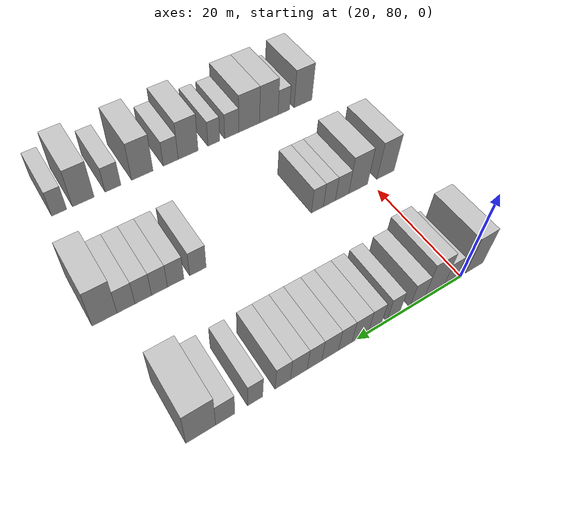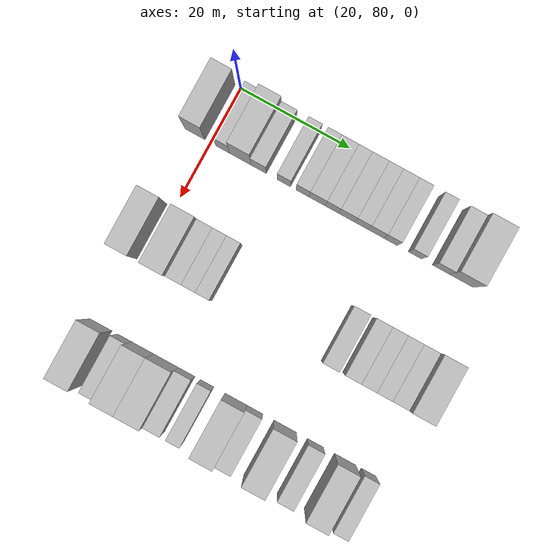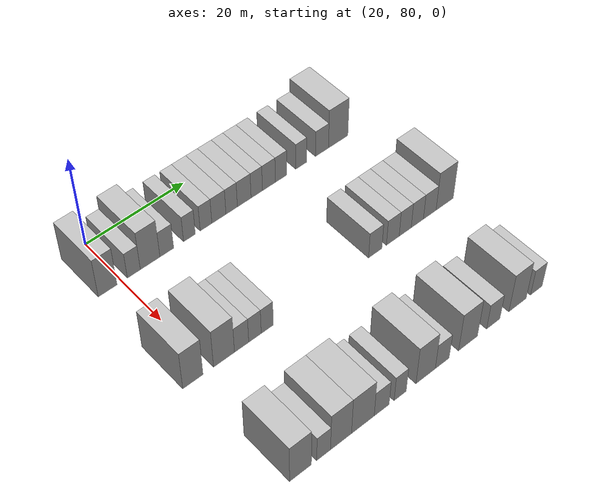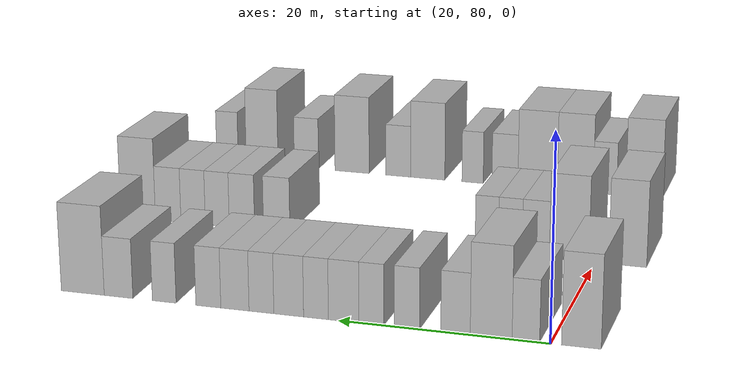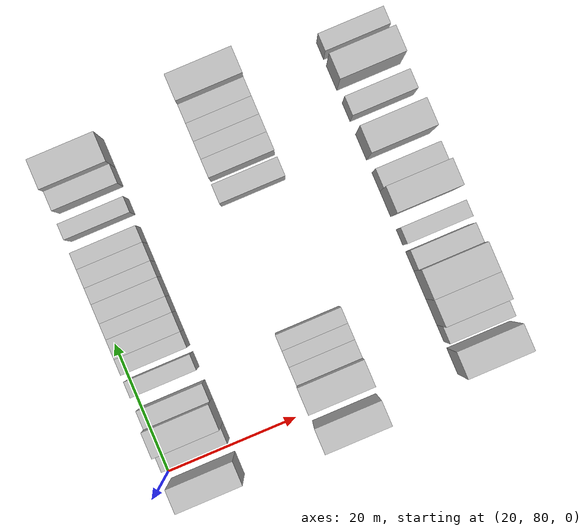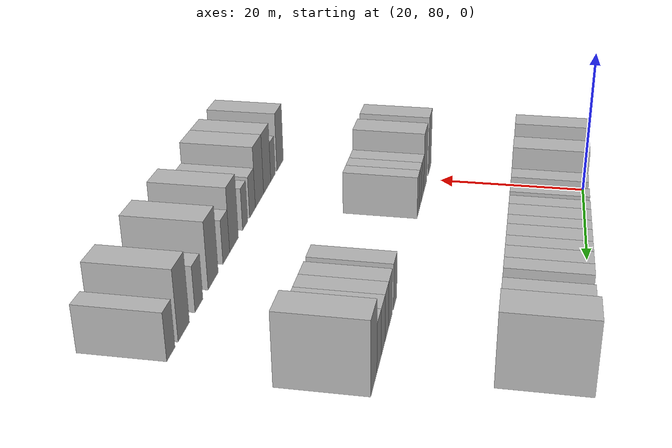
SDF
<sdf version="1.6">
 <world name="default">
  <model name="building_118">
   <static>1</static>
   <pose>25.0000 77.1916 0 0.000000 0.000000 0.000000</pose>
   <link name="link">
    <pose>0 0 4.50 0 0 0</pose>
    <collision name="collision"><geometry><box><size>10.0000 3.6108 9.0000</size></box></geometry></collision>
    <visual name="visual">
     <cast_shadows>0</cast_shadows>
     <geometry><box><size>10.0000 3.6108 9.0000</size></box></geometry>
     <material>
      <script>
       <uri>model://HANNAS_wall/materials/scripts</uri>
       <uri>model://HANNAS_wall/materials/textures</uri>
       <name>vrc/HANNAS_wall</name>
      </script>
     </material>
    </visual>
   </link>
  </model>
  <model name="building_119">
   <static>1</static>
   <pose>25.0000 82.2670 0 0.000000 0.000000 0.000000</pose>
   <link name="link">
    <pose>0 0 3.00 0 0 0</pose>
    <collision name="collision"><geometry><box><size>10.0000 2.5400 6.0000</size></box></geometry></collision>
    <visual name="visual">
     <cast_shadows>0</cast_shadows>
     <geometry><box><size>10.0000 2.5400 6.0000</size></box></geometry>
     <material>
      <script>
       <uri>model://HANNAS_wall/materials/scripts</uri>
       <uri>model://HANNAS_wall/materials/textures</uri>
       <name>vrc/HANNAS_wall</name>
      </script>
     </material>
    </visual>
   </link>
  </model>
  <model name="building_120">
   <static>1</static>
   <pose>25.0000 85.4828 0 0.000000 0.000000 0.000000</pose>
   <link name="link">
    <pose>0 0 4.50 0 0 0</pose>
    <collision name="collision"><geometry><box><size>10.0000 3.8915 9.0000</size></box></geometry></collision>
    <visual name="visual">
     <cast_shadows>0</cast_shadows>
     <geometry><box><size>10.0000 3.8915 9.0000</size></box></geometry>
     <material>
      <script>
       <uri>model://HANNAS_wall/materials/scripts</uri>
       <uri>model://HANNAS_wall/materials/textures</uri>
       <name>vrc/HANNAS_wall</name>
      </script>
     </material>
    </visual>
   </link>
  </model>
  <model name="building_121">
   <static>1</static>
   <pose>25.0000 88.8142 0 0.000000 0.000000 0.000000</pose>
   <link name="link">
    <pose>0 0 3.00 0 0 0</pose>
    <collision name="collision"><geometry><box><size>10.0000 2.7714 6.0000</size></box></geometry></collision>
    <visual name="visual">
     <cast_shadows>0</cast_shadows>
     <geometry><box><size>10.0000 2.7714 6.0000</size></box></geometry>
     <material>
      <script>
       <uri>model://HANNAS_wall/materials/scripts</uri>
       <uri>model://HANNAS_wall/materials/textures</uri>
       <name>vrc/HANNAS_wall</name>
      </script>
     </material>
    </visual>
   </link>
  </model>
  <model name="building_122">
   <static>1</static>
   <pose>25.0000 93.4054 0 0.000000 0.000000 0.000000</pose>
   <link name="link">
    <pose>0 0 3.00 0 0 0</pose>
    <collision name="collision"><geometry><box><size>10.0000 2.4109 6.0000</size></box></geometry></collision>
    <visual name="visual">
     <cast_shadows>0</cast_shadows>
     <geometry><box><size>10.0000 2.4109 6.0000</size></box></geometry>
     <material>
      <script>
       <uri>model://HANNAS_wall/materials/scripts</uri>
       <uri>model://HANNAS_wall/materials/textures</uri>
       <name>vrc/HANNAS_wall</name>
      </script>
     </material>
    </visual>
   </link>
  </model>
  <model name="building_123">
   <static>1</static>
   <pose>25.0000 96.8146 0 0.000000 0.000000 0.000000</pose>
   <link name="link">
    <pose>0 0 3.00 0 0 0</pose>
    <collision name="collision"><geometry><box><size>10.0000 2.4075 6.0000</size></box></geometry></collision>
    <visual name="visual">
     <cast_shadows>0</cast_shadows>
     <geometry><box><size>10.0000 2.4075 6.0000</size></box></geometry>
     <material>
      <script>
       <uri>model://HANNAS_wall/materials/scripts</uri>
       <uri>model://HANNAS_wall/materials/textures</uri>
       <name>vrc/HANNAS_wall</name>
      </script>
     </material>
    </visual>
   </link>
  </model>
  <model name="building_124">
   <static>1</static>
   <pose>25.0000 99.4954 0 0.000000 0.000000 0.000000</pose>
   <link name="link">
    <pose>0 0 3.00 0 0 0</pose>
    <collision name="collision"><geometry><box><size>10.0000 2.9541 6.0000</size></box></geometry></collision>
    <visual name="visual">
     <cast_shadows>0</cast_shadows>
     <geometry><box><size>10.0000 2.9541 6.0000</size></box></geometry>
     <material>
      <script>
       <uri>model://HANNAS_wall/materials/scripts</uri>
       <uri>model://HANNAS_wall/materials/textures</uri>
       <name>vrc/HANNAS_wall</name>
      </script>
     </material>
    </visual>
   </link>
  </model>
  <model name="building_125">
   <static>1</static>
   <pose>25.0000 102.1834 0 0.000000 0.000000 0.000000</pose>
   <link name="link">
    <pose>0 0 3.00 0 0 0</pose>
    <collision name="collision"><geometry><box><size>10.0000 2.4220 6.0000</size></box></geometry></collision>
    <visual name="visual">
     <cast_shadows>0</cast_shadows>
     <geometry><box><size>10.0000 2.4220 6.0000</size></box></geometry>
     <material>
      <script>
       <uri>model://HANNAS_wall/materials/scripts</uri>
       <uri>model://HANNAS_wall/materials/textures</uri>
       <name>vrc/HANNAS_wall</name>
      </script>
     </material>
    </visual>
   </link>
  </model>
  <model name="building_126">
   <static>1</static>
   <pose>25.0000 104.8587 0 0.000000 0.000000 0.000000</pose>
   <link name="link">
    <pose>0 0 3.00 0 0 0</pose>
    <collision name="collision"><geometry><box><size>10.0000 2.9284 6.0000</size></box></geometry></collision>
    <visual name="visual">
     <cast_shadows>0</cast_shadows>
     <geometry><box><size>10.0000 2.9284 6.0000</size></box></geometry>
     <material>
      <script>
       <uri>model://HANNAS_wall/materials/scripts</uri>
       <uri>model://HANNAS_wall/materials/textures</uri>
       <name>vrc/HANNAS_wall</name>
      </script>
     </material>
    </visual>
   </link>
  </model>
  <model name="building_127">
   <static>1</static>
   <pose>25.0000 107.5523 0 0.000000 0.000000 0.000000</pose>
   <link name="link">
    <pose>0 0 3.00 0 0 0</pose>
    <collision name="collision"><geometry><box><size>10.0000 2.4589 6.0000</size></box></geometry></collision>
    <visual name="visual">
     <cast_shadows>0</cast_shadows>
     <geometry><box><size>10.0000 2.4589 6.0000</size></box></geometry>
     <material>
      <script>
       <uri>model://HANNAS_wall/materials/scripts</uri>
       <uri>model://HANNAS_wall/materials/textures</uri>
       <name>vrc/HANNAS_wall</name>
      </script>
     </material>
    </visual>
   </link>
  </model>
  <model name="building_128">
   <static>1</static>
   <pose>25.0000 110.1940 0 0.000000 0.000000 0.000000</pose>
   <link name="link">
    <pose>0 0 3.00 0 0 0</pose>
    <collision name="collision"><geometry><box><size>10.0000 2.8244 6.0000</size></box></geometry></collision>
    <visual name="visual">
     <cast_shadows>0</cast_shadows>
     <geometry><box><size>10.0000 2.8244 6.0000</size></box></geometry>
     <material>
      <script>
       <uri>model://HANNAS_wall/materials/scripts</uri>
       <uri>model://HANNAS_wall/materials/textures</uri>
       <name>vrc/HANNAS_wall</name>
      </script>
     </material>
    </visual>
   </link>
  </model>
  <model name="building_129">
   <static>1</static>
   <pose>25.0000 112.8633 0 0.000000 0.000000 0.000000</pose>
   <link name="link">
    <pose>0 0 3.00 0 0 0</pose>
    <collision name="collision"><geometry><box><size>10.0000 2.5143 6.0000</size></box></geometry></collision>
    <visual name="visual">
     <cast_shadows>0</cast_shadows>
     <geometry><box><size>10.0000 2.5143 6.0000</size></box></geometry>
     <material>
      <script>
       <uri>model://HANNAS_wall/materials/scripts</uri>
       <uri>model://HANNAS_wall/materials/textures</uri>
       <name>vrc/HANNAS_wall</name>
      </script>
     </material>
    </visual>
   </link>
  </model>
  <model name="building_130">
   <static>1</static>
   <pose>25.0000 117.3321 0 0.000000 0.000000 0.000000</pose>
   <link name="link">
    <pose>0 0 3.00 0 0 0</pose>
    <collision name="collision"><geometry><box><size>10.0000 2.4233 6.0000</size></box></geometry></collision>
    <visual name="visual">
     <cast_shadows>0</cast_shadows>
     <geometry><box><size>10.0000 2.4233 6.0000</size></box></geometry>
     <material>
      <script>
       <uri>model://HANNAS_wall/materials/scripts</uri>
       <uri>model://HANNAS_wall/materials/textures</uri>
       <name>vrc/HANNAS_wall</name>
      </script>
     </material>
    </visual>
   </link>
  </model>
  <model name="building_131">
   <static>1</static>
   <pose>25.0000 122.0256 0 0.000000 0.000000 0.000000</pose>
   <link name="link">
    <pose>0 0 3.00 0 0 0</pose>
    <collision name="collision"><geometry><box><size>10.0000 2.9635 6.0000</size></box></geometry></collision>
    <visual name="visual">
     <cast_shadows>0</cast_shadows>
     <geometry><box><size>10.0000 2.9635 6.0000</size></box></geometry>
     <material>
      <script>
       <uri>model://HANNAS_wall/materials/scripts</uri>
       <uri>model://HANNAS_wall/materials/textures</uri>
       <name>vrc/HANNAS_wall</name>
      </script>
     </material>
    </visual>
   </link>
  </model>
  <model name="building_132">
   <static>1</static>
   <pose>25.0000 125.7455 0 0.000000 0.000000 0.000000</pose>
   <link name="link">
    <pose>0 0 4.50 0 0 0</pose>
    <collision name="collision"><geometry><box><size>10.0000 4.4764 9.0000</size></box></geometry></collision>
    <visual name="visual">
     <cast_shadows>0</cast_shadows>
     <geometry><box><size>10.0000 4.4764 9.0000</size></box></geometry>
     <material>
      <script>
       <uri>model://HANNAS_wall/materials/scripts</uri>
       <uri>model://HANNAS_wall/materials/textures</uri>
       <name>vrc/HANNAS_wall</name>
      </script>
     </material>
    </visual>
   </link>
  </model>
  <model name="building_305">
   <static>1</static>
   <pose>47.0000 76.7585 0 0.000000 0.000000 0.000000</pose>
   <link name="link">
    <pose>0 0 4.50 0 0 0</pose>
    <collision name="collision"><geometry><box><size>10.0000 3.8230 9.0000</size></box></geometry></collision>
    <visual name="visual">
     <cast_shadows>0</cast_shadows>
     <geometry><box><size>10.0000 3.8230 9.0000</size></box></geometry>
     <material>
      <script>
       <uri>model://HANNAS_wall/materials/scripts</uri>
       <uri>model://HANNAS_wall/materials/textures</uri>
       <name>vrc/HANNAS_wall</name>
      </script>
     </material>
    </visual>
   </link>
  </model>
  <model name="building_306">
   <static>1</static>
   <pose>47.0000 82.6899 0 0.000000 0.000000 0.000000</pose>
   <link name="link">
    <pose>0 0 4.50 0 0 0</pose>
    <collision name="collision"><geometry><box><size>10.0000 4.0398 9.0000</size></box></geometry></collision>
    <visual name="visual">
     <cast_shadows>0</cast_shadows>
     <geometry><box><size>10.0000 4.0398 9.0000</size></box></geometry>
     <material>
      <script>
       <uri>model://HANNAS_wall/materials/scripts</uri>
       <uri>model://HANNAS_wall/materials/textures</uri>
       <name>vrc/HANNAS_wall</name>
      </script>
     </material>
    </visual>
   </link>
  </model>
  <model name="building_307">
   <static>1</static>
   <pose>47.0000 86.1026 0 0.000000 0.000000 0.000000</pose>
   <link name="link">
    <pose>0 0 3.00 0 0 0</pose>
    <collision name="collision"><geometry><box><size>10.0000 2.7854 6.0000</size></box></geometry></collision>
    <visual name="visual">
     <cast_shadows>0</cast_shadows>
     <geometry><box><size>10.0000 2.7854 6.0000</size></box></geometry>
     <material>
      <script>
       <uri>model://HANNAS_wall/materials/scripts</uri>
       <uri>model://HANNAS_wall/materials/textures</uri>
       <name>vrc/HANNAS_wall</name>
      </script>
     </material>
    </visual>
   </link>
  </model>
  <model name="building_308">
   <static>1</static>
   <pose>47.0000 88.7317 0 0.000000 0.000000 0.000000</pose>
   <link name="link">
    <pose>0 0 3.00 0 0 0</pose>
    <collision name="collision"><geometry><box><size>10.0000 2.4728 6.0000</size></box></geometry></collision>
    <visual name="visual">
     <cast_shadows>0</cast_shadows>
     <geometry><box><size>10.0000 2.4728 6.0000</size></box></geometry>
     <material>
      <script>
       <uri>model://HANNAS_wall/materials/scripts</uri>
       <uri>model://HANNAS_wall/materials/textures</uri>
       <name>vrc/HANNAS_wall</name>
      </script>
     </material>
    </visual>
   </link>
  </model>
  <model name="building_309">
   <static>1</static>
   <pose>47.0000 91.1850 0 0.000000 0.000000 0.000000</pose>
   <link name="link">
    <pose>0 0 3.00 0 0 0</pose>
    <collision name="collision"><geometry><box><size>10.0000 2.4337 6.0000</size></box></geometry></collision>
    <visual name="visual">
     <cast_shadows>0</cast_shadows>
     <geometry><box><size>10.0000 2.4337 6.0000</size></box></geometry>
     <material>
      <script>
       <uri>model://HANNAS_wall/materials/scripts</uri>
       <uri>model://HANNAS_wall/materials/textures</uri>
       <name>vrc/HANNAS_wall</name>
      </script>
     </material>
    </visual>
   </link>
  </model>
  <model name="building_310">
   <static>1</static>
   <pose>47.0000 113.7740 0 0.000000 0.000000 0.000000</pose>
   <link name="link">
    <pose>0 0 3.00 0 0 0</pose>
    <collision name="collision"><geometry><box><size>10.0000 2.9148 6.0000</size></box></geometry></collision>
    <visual name="visual">
     <cast_shadows>0</cast_shadows>
     <geometry><box><size>10.0000 2.9148 6.0000</size></box></geometry>
     <material>
      <script>
       <uri>model://HANNAS_wall/materials/scripts</uri>
       <uri>model://HANNAS_wall/materials/textures</uri>
       <name>vrc/HANNAS_wall</name>
      </script>
     </material>
    </visual>
   </link>
  </model>
  <model name="building_311">
   <static>1</static>
   <pose>47.0000 117.6431 0 0.000000 0.000000 0.000000</pose>
   <link name="link">
    <pose>0 0 3.00 0 0 0</pose>
    <collision name="collision"><geometry><box><size>10.0000 2.8233 6.0000</size></box></geometry></collision>
    <visual name="visual">
     <cast_shadows>0</cast_shadows>
     <geometry><box><size>10.0000 2.8233 6.0000</size></box></geometry>
     <material>
      <script>
       <uri>model://HANNAS_wall/materials/scripts</uri>
       <uri>model://HANNAS_wall/materials/textures</uri>
       <name>vrc/HANNAS_wall</name>
      </script>
     </material>
    </visual>
   </link>
  </model>
  <model name="building_312">
   <static>1</static>
   <pose>47.0000 120.4035 0 0.000000 0.000000 0.000000</pose>
   <link name="link">
    <pose>0 0 3.00 0 0 0</pose>
    <collision name="collision"><geometry><box><size>10.0000 2.6976 6.0000</size></box></geometry></collision>
    <visual name="visual">
     <cast_shadows>0</cast_shadows>
     <geometry><box><size>10.0000 2.6976 6.0000</size></box></geometry>
     <material>
      <script>
       <uri>model://HANNAS_wall/materials/scripts</uri>
       <uri>model://HANNAS_wall/materials/textures</uri>
       <name>vrc/HANNAS_wall</name>
      </script>
     </material>
    </visual>
   </link>
  </model>
  <model name="building_313">
   <static>1</static>
   <pose>47.0000 123.1365 0 0.000000 0.000000 0.000000</pose>
   <link name="link">
    <pose>0 0 3.00 0 0 0</pose>
    <collision name="collision"><geometry><box><size>10.0000 2.7683 6.0000</size></box></geometry></collision>
    <visual name="visual">
     <cast_shadows>0</cast_shadows>
     <geometry><box><size>10.0000 2.7683 6.0000</size></box></geometry>
     <material>
      <script>
       <uri>model://HANNAS_wall/materials/scripts</uri>
       <uri>model://HANNAS_wall/materials/textures</uri>
       <name>vrc/HANNAS_wall</name>
      </script>
     </material>
    </visual>
   </link>
  </model>
  <model name="building_314">
   <static>1</static>
   <pose>47.0000 125.9734 0 0.000000 0.000000 0.000000</pose>
   <link name="link">
    <pose>0 0 3.00 0 0 0</pose>
    <collision name="collision"><geometry><box><size>10.0000 2.9054 6.0000</size></box></geometry></collision>
    <visual name="visual">
     <cast_shadows>0</cast_shadows>
     <geometry><box><size>10.0000 2.9054 6.0000</size></box></geometry>
     <material>
      <script>
       <uri>model://HANNAS_wall/materials/scripts</uri>
       <uri>model://HANNAS_wall/materials/textures</uri>
       <name>vrc/HANNAS_wall</name>
      </script>
     </material>
    </visual>
   </link>
  </model>
  <model name="building_315">
   <static>1</static>
   <pose>47.0000 129.4264 0 0.000000 0.000000 0.000000</pose>
   <link name="link">
    <pose>0 0 4.50 0 0 0</pose>
    <collision name="collision"><geometry><box><size>10.0000 4.0007 9.0000</size></box></geometry></collision>
    <visual name="visual">
     <cast_shadows>0</cast_shadows>
     <geometry><box><size>10.0000 4.0007 9.0000</size></box></geometry>
     <material>
      <script>
       <uri>model://HANNAS_wall/materials/scripts</uri>
       <uri>model://HANNAS_wall/materials/textures</uri>
       <name>vrc/HANNAS_wall</name>
      </script>
     </material>
    </visual>
   </link>
  </model>
  <model name="building_497">
   <static>1</static>
   <pose>69.0000 78.6778 0 0.000000 0.000000 0.000000</pose>
   <link name="link">
    <pose>0 0 4.50 0 0 0</pose>
    <collision name="collision"><geometry><box><size>10.0000 4.0840 9.0000</size></box></geometry></collision>
    <visual name="visual">
     <cast_shadows>0</cast_shadows>
     <geometry><box><size>10.0000 4.0840 9.0000</size></box></geometry>
     <material>
      <script>
       <uri>model://HANNAS_wall/materials/scripts</uri>
       <uri>model://HANNAS_wall/materials/textures</uri>
       <name>vrc/HANNAS_wall</name>
      </script>
     </material>
    </visual>
   </link>
  </model>
  <model name="building_498">
   <static>1</static>
   <pose>69.0000 83.0371 0 0.000000 0.000000 0.000000</pose>
   <link name="link">
    <pose>0 0 3.00 0 0 0</pose>
    <collision name="collision"><geometry><box><size>10.0000 2.6346 6.0000</size></box></geometry></collision>
    <visual name="visual">
     <cast_shadows>0</cast_shadows>
     <geometry><box><size>10.0000 2.6346 6.0000</size></box></geometry>
     <material>
      <script>
       <uri>model://HANNAS_wall/materials/scripts</uri>
       <uri>model://HANNAS_wall/materials/textures</uri>
       <name>vrc/HANNAS_wall</name>
      </script>
     </material>
    </visual>
   </link>
  </model>
  <model name="building_499">
   <static>1</static>
   <pose>69.0000 86.3886 0 0.000000 0.000000 0.000000</pose>
   <link name="link">
    <pose>0 0 4.50 0 0 0</pose>
    <collision name="collision"><geometry><box><size>10.0000 4.0684 9.0000</size></box></geometry></collision>
    <visual name="visual">
     <cast_shadows>0</cast_shadows>
     <geometry><box><size>10.0000 4.0684 9.0000</size></box></geometry>
     <material>
      <script>
       <uri>model://HANNAS_wall/materials/scripts</uri>
       <uri>model://HANNAS_wall/materials/textures</uri>
       <name>vrc/HANNAS_wall</name>
      </script>
     </material>
    </visual>
   </link>
  </model>
  <model name="building_500">
   <static>1</static>
   <pose>69.0000 90.6580 0 0.000000 0.000000 0.000000</pose>
   <link name="link">
    <pose>0 0 4.50 0 0 0</pose>
    <collision name="collision"><geometry><box><size>10.0000 4.4703 9.0000</size></box></geometry></collision>
    <visual name="visual">
     <cast_shadows>0</cast_shadows>
     <geometry><box><size>10.0000 4.4703 9.0000</size></box></geometry>
     <material>
      <script>
       <uri>model://HANNAS_wall/materials/scripts</uri>
       <uri>model://HANNAS_wall/materials/textures</uri>
       <name>vrc/HANNAS_wall</name>
      </script>
     </material>
    </visual>
   </link>
  </model>
  <model name="building_501">
   <static>1</static>
   <pose>69.0000 94.3881 0 0.000000 0.000000 0.000000</pose>
   <link name="link">
    <pose>0 0 3.00 0 0 0</pose>
    <collision name="collision"><geometry><box><size>10.0000 2.9900 6.0000</size></box></geometry></collision>
    <visual name="visual">
     <cast_shadows>0</cast_shadows>
     <geometry><box><size>10.0000 2.9900 6.0000</size></box></geometry>
     <material>
      <script>
       <uri>model://HANNAS_wall/materials/scripts</uri>
       <uri>model://HANNAS_wall/materials/textures</uri>
       <name>vrc/HANNAS_wall</name>
      </script>
     </material>
    </visual>
   </link>
  </model>
  <model name="building_502">
   <static>1</static>
   <pose>69.0000 98.1186 0 0.000000 0.000000 0.000000</pose>
   <link name="link">
    <pose>0 0 3.00 0 0 0</pose>
    <collision name="collision"><geometry><box><size>10.0000 2.4710 6.0000</size></box></geometry></collision>
    <visual name="visual">
     <cast_shadows>0</cast_shadows>
     <geometry><box><size>10.0000 2.4710 6.0000</size></box></geometry>
     <material>
      <script>
       <uri>model://HANNAS_wall/materials/scripts</uri>
       <uri>model://HANNAS_wall/materials/textures</uri>
       <name>vrc/HANNAS_wall</name>
      </script>
     </material>
    </visual>
   </link>
  </model>
  <model name="building_503">
   <static>1</static>
   <pose>69.0000 103.3602 0 0.000000 0.000000 0.000000</pose>
   <link name="link">
    <pose>0 0 4.50 0 0 0</pose>
    <collision name="collision"><geometry><box><size>10.0000 4.0122 9.0000</size></box></geometry></collision>
    <visual name="visual">
     <cast_shadows>0</cast_shadows>
     <geometry><box><size>10.0000 4.0122 9.0000</size></box></geometry>
     <material>
      <script>
       <uri>model://HANNAS_wall/materials/scripts</uri>
       <uri>model://HANNAS_wall/materials/textures</uri>
       <name>vrc/HANNAS_wall</name>
      </script>
     </material>
    </visual>
   </link>
  </model>
  <model name="building_504">
   <static>1</static>
   <pose>69.0000 106.8369 0 0.000000 0.000000 0.000000</pose>
   <link name="link">
    <pose>0 0 3.00 0 0 0</pose>
    <collision name="collision"><geometry><box><size>10.0000 2.9411 6.0000</size></box></geometry></collision>
    <visual name="visual">
     <cast_shadows>0</cast_shadows>
     <geometry><box><size>10.0000 2.9411 6.0000</size></box></geometry>
     <material>
      <script>
       <uri>model://HANNAS_wall/materials/scripts</uri>
       <uri>model://HANNAS_wall/materials/textures</uri>
       <name>vrc/HANNAS_wall</name>
      </script>
     </material>
    </visual>
   </link>
  </model>
  <model name="building_505">
   <static>1</static>
   <pose>69.0000 112.3568 0 0.000000 0.000000 0.000000</pose>
   <link name="link">
    <pose>0 0 4.50 0 0 0</pose>
    <collision name="collision"><geometry><box><size>10.0000 4.0987 9.0000</size></box></geometry></collision>
    <visual name="visual">
     <cast_shadows>0</cast_shadows>
     <geometry><box><size>10.0000 4.0987 9.0000</size></box></geometry>
     <material>
      <script>
       <uri>model://HANNAS_wall/materials/scripts</uri>
       <uri>model://HANNAS_wall/materials/textures</uri>
       <name>vrc/HANNAS_wall</name>
      </script>
     </material>
    </visual>
   </link>
  </model>
  <model name="building_506">
   <static>1</static>
   <pose>69.0000 117.8747 0 0.000000 0.000000 0.000000</pose>
   <link name="link">
    <pose>0 0 3.00 0 0 0</pose>
    <collision name="collision"><geometry><box><size>10.0000 2.9372 6.0000</size></box></geometry></collision>
    <visual name="visual">
     <cast_shadows>0</cast_shadows>
     <geometry><box><size>10.0000 2.9372 6.0000</size></box></geometry>
     <material>
      <script>
       <uri>model://HANNAS_wall/materials/scripts</uri>
       <uri>model://HANNAS_wall/materials/textures</uri>
       <name>vrc/HANNAS_wall</name>
      </script>
     </material>
    </visual>
   </link>
  </model>
  <model name="building_507">
   <static>1</static>
   <pose>69.0000 123.2954 0 0.000000 0.000000 0.000000</pose>
   <link name="link">
    <pose>0 0 4.50 0 0 0</pose>
    <collision name="collision"><geometry><box><size>10.0000 3.9042 9.0000</size></box></geometry></collision>
    <visual name="visual">
     <cast_shadows>0</cast_shadows>
     <geometry><box><size>10.0000 3.9042 9.0000</size></box></geometry>
     <material>
      <script>
       <uri>model://HANNAS_wall/materials/scripts</uri>
       <uri>model://HANNAS_wall/materials/textures</uri>
       <name>vrc/HANNAS_wall</name>
      </script>
     </material>
    </visual>
   </link>
  </model>
  <model name="building_508">
   <static>1</static>
   <pose>69.0000 127.5794 0 0.000000 0.000000 0.000000</pose>
   <link name="link">
    <pose>0 0 3.00 0 0 0</pose>
    <collision name="collision"><geometry><box><size>10.0000 2.6639 6.0000</size></box></geometry></collision>
    <visual name="visual">
     <cast_shadows>0</cast_shadows>
     <geometry><box><size>10.0000 2.6639 6.0000</size></box></geometry>
     <material>
      <script>
       <uri>model://HANNAS_wall/materials/scripts</uri>
       <uri>model://HANNAS_wall/materials/textures</uri>
       <name>vrc/HANNAS_wall</name>
      </script>
     </material>
    </visual>
   </link>
  </model>
 </world>
</sdf>
